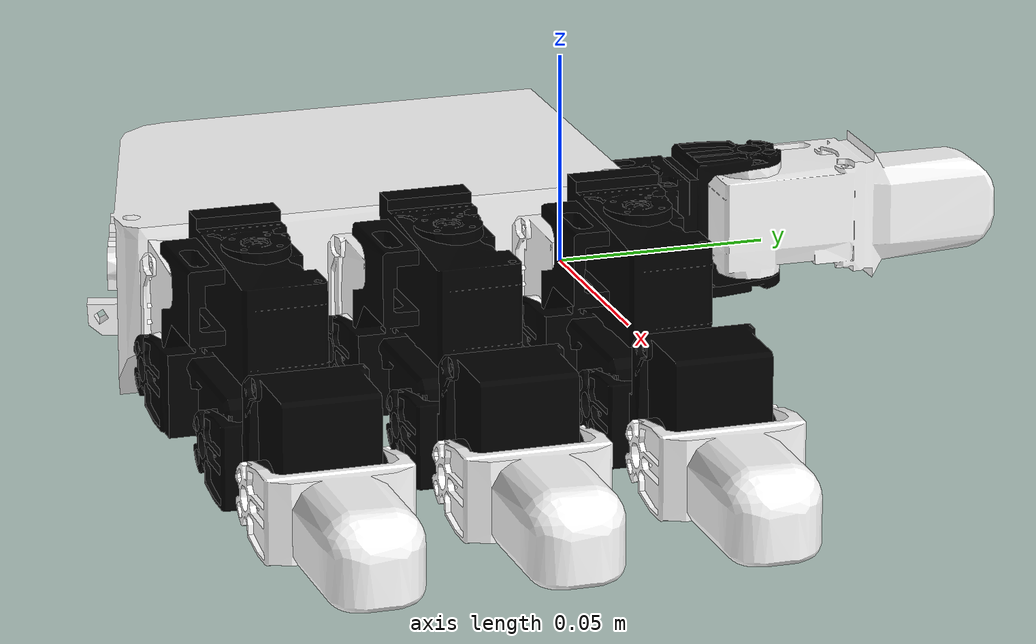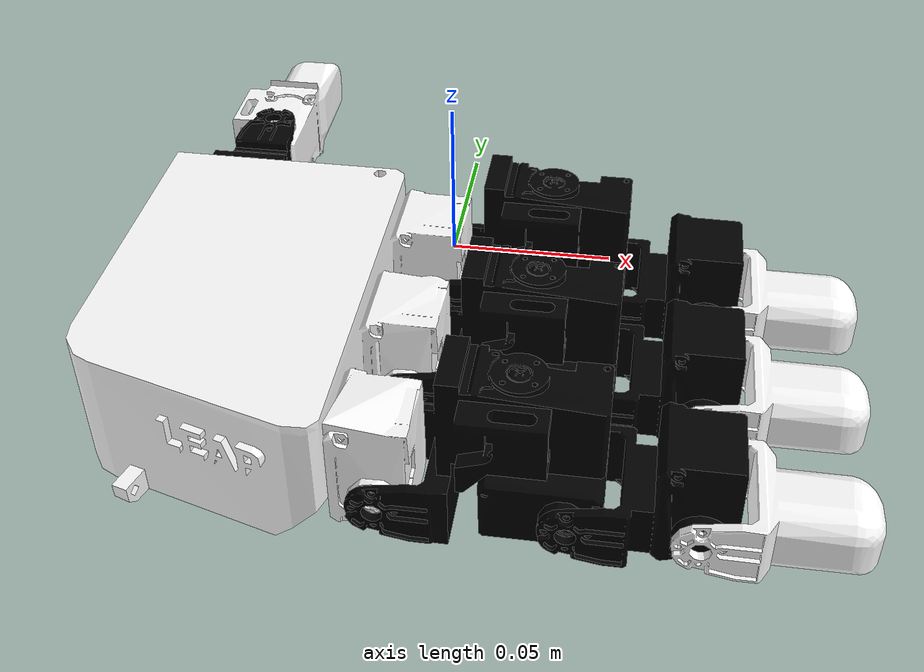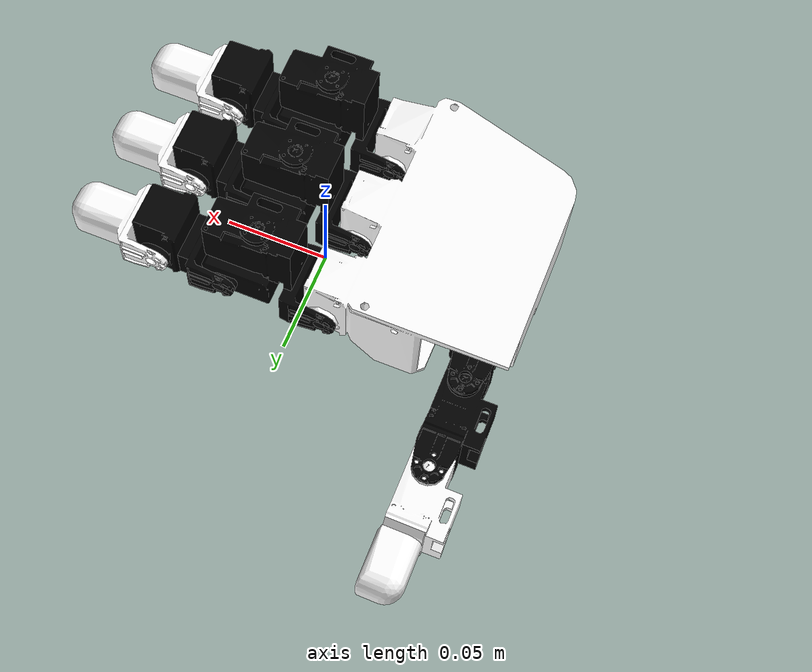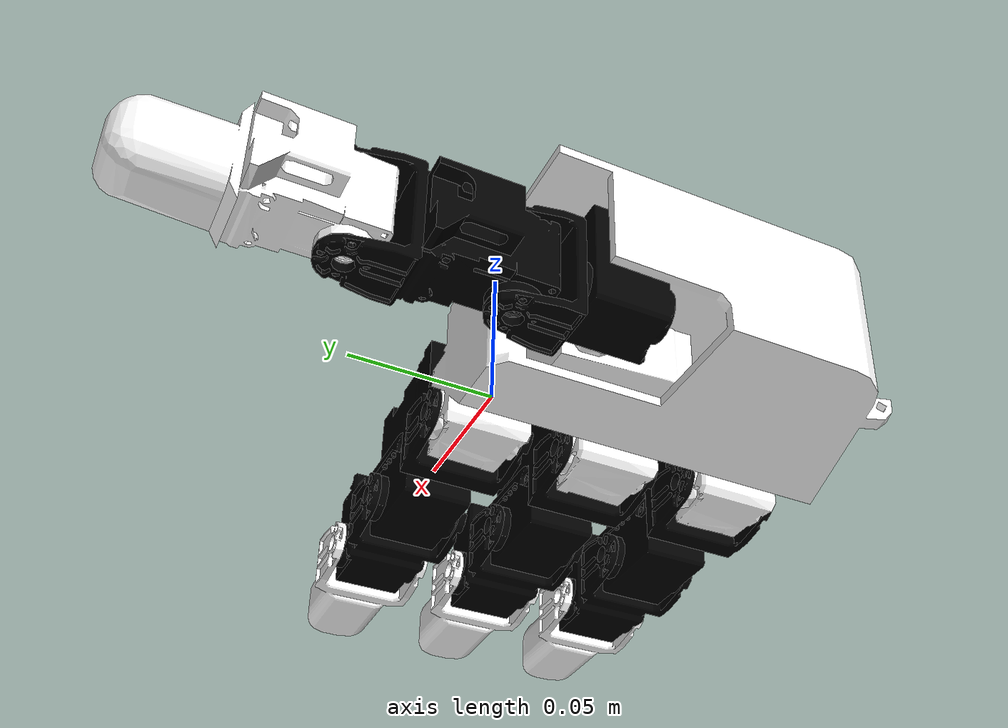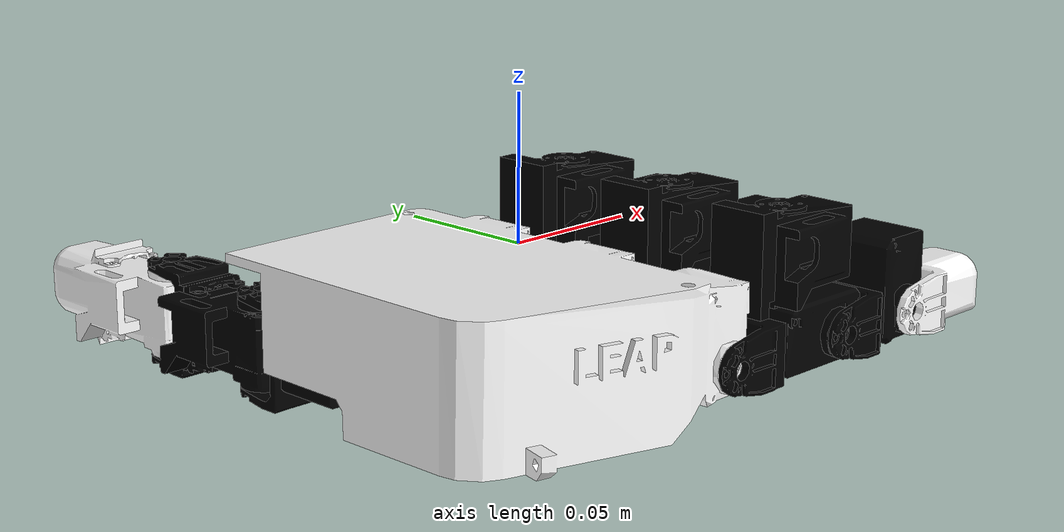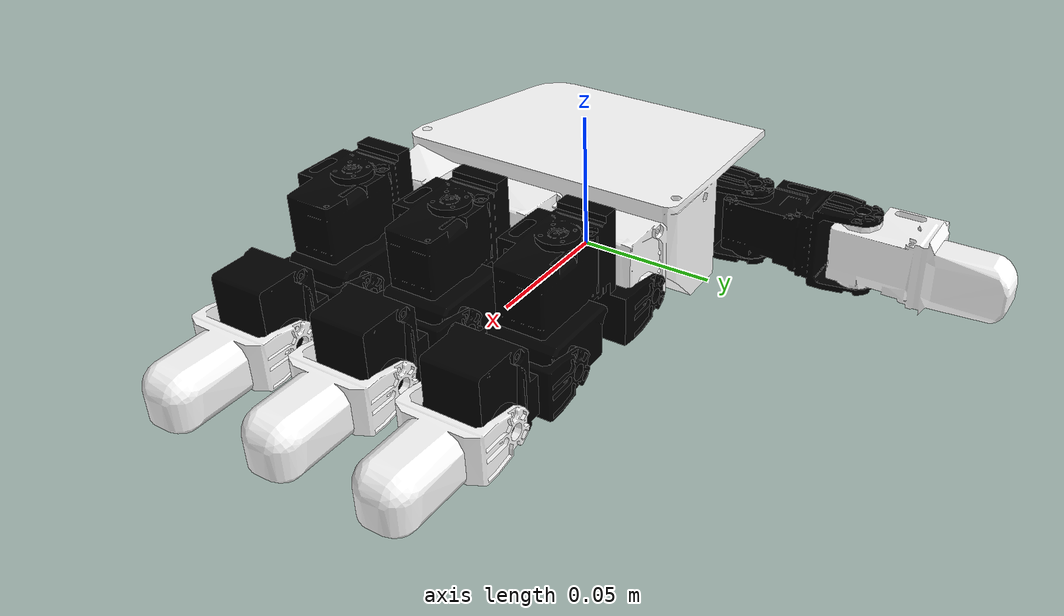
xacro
<?xml version="1.0"?>
<robot xmlns:xacro="http://www.ros.org/wiki/xacro" name="leap">
    <xacro:arg name="initial_positions_file" default="initial_positions.yaml" />
    <xacro:arg name="use_gazebo" default="false" />

    <!-- Import leap urdf file -->
    <xacro:include filename="$(find leap_description)/assets/leap_hand/robot.urdf.xacro" />

    <!-- Import control_xacro -->

    <xacro:if value="$(arg use_gazebo)">
        <xacro:include filename="leap.gz_control.xacro" />
        <xacro:leap_gz_control name="GazeboSimSystem" initial_positions_file="$(arg initial_positions_file)"/>
        <gazebo>
            <plugin filename="libgz_ros2_control-system.so" name="gz_ros2_control::GazeboSimROS2ControlPlugin">
                <parameters>/home/joel/distrobox/ros2-ubuntu/leap_ws/src/leap_control/leap_sim/config/leap_controller.yaml</parameters>
            </plugin>
        </gazebo>
    </xacro:if>
    <xacro:unless value="$(arg use_gazebo)">
        <xacro:include filename="leap.ros2_control.xacro" />
        <xacro:leap_ros2_control name="FakeSystem" initial_positions_file="$(arg initial_positions_file)"/>
    </xacro:unless>

</robot>

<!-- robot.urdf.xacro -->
<robot xmlns:xacro="http://www.ros.org/wiki/xacro" name="leap">

    <xacro:include filename="$(find leap_description)/assets/leap_hand/finger.xacro" />

    <link name="palm_lower">
        <visual>
            <origin xyz="-0.020095249652862544332 0.025757756134899473244 -0.034722403578460216134"
                rpy="0 -0 0" />
            <geometry>
                <mesh filename="package://leap_description/assets/leap_hand/palm_lower_3k.stl" />
            </geometry>
            <material name="palm_lower_material">
                <color
                    rgba="1 1 1 1.0" />
            </material>
        </visual>
        <collision>
            <origin xyz="-0.020095249652862544332 0.025757756134899473244 -0.034722403578460216134"
                rpy="0 -0 0" />
            <geometry>
                <mesh filename="package://leap_description/assets/leap_hand/palm_lower_3k_collision.stl" />
            </geometry>
        </collision>
        <inertial>
            <origin xyz="0 0 0" rpy="0 0 0" />
            <mass value="0.237" />
            <inertia ixx="0.000354094" ixy="-0.000001193" ixz="-0.000002445" iyy="0.000260915"
                iyz="-0.000002905" izz="0.000529257" />
        </inertial>
    </link>

    <xacro:finger_template finger="index" root="palm_lower" x="-0.0070952496528625457958"
        y="0.023057756134899472233" z="-0.01872240357846021927" />

    <xacro:finger_template finger="middle" root="palm_lower" x="-0.0070952496528625457958"
        y="-0.022392243865100525113" z="-0.01872240357846021927" />

    <xacro:finger_template finger="ring" root="palm_lower" x="-0.0070952496528625457958"
        y="-0.067842243865100515521" z="-0.01872240357846021927" />

    <link name="thumb_semi_palm_1">
        <visual>
            <origin
                xyz="-0.005356 0.0003 0.000784"
                rpy="-1.570796326794896558 -1.570796326794896336 0" />
            <geometry>
                <mesh filename="package://leap_description/assets/leap_hand/proximal_phalanx_2_2k.stl" />
            </geometry>
            <material name="thumb_semi_palm_2_material">
                <color
                    rgba="0 0 0 1.0" />
            </material>
        </visual>
        <collision>
            <origin
                xyz="-0.005356 0.0003 0.000784"
                rpy="-1.570796326794896558 -1.570796326794896336 0" />
            <geometry>
                <mesh filename="package://leap_description/assets/leap_hand/proximal_phalanx_2_2k_collision.stl" />
            </geometry>
        </collision>
        <inertial>
            <origin xyz="0 0 0" rpy="0 0 0" />
            <mass value="0.032" />
            <inertia ixx="0.000004798" ixy="0.000000012" ixz="0.000000004" iyy="0.000002862"
                iyz="0.000000011" izz="0.000004234" />
        </inertial>
    </link>

    <link name="thumb_semi_palm_2">
        <visual>
            <origin
                xyz="0.011962 0 -0.0158526"
                rpy="1.570796326794896558 0 0" />
            <geometry>
                <mesh filename="package://leap_description/assets/leap_hand/thumb_semi_palm_1k.stl" />
            </geometry>
            <material name="thumb_semi_palm_2_material">
                <color
                    rgba="0 0 0 1.0" />
            </material>
        </visual>
        <collision>
            <origin
                xyz="0.011962 0 -0.015853"
                rpy="1.570796326794896558 0 0" />
            <geometry>
                <mesh filename="package://leap_description/assets/leap_hand/thumb_semi_palm_1k_collision.stl" />
            </geometry>
        </collision>
        <inertial>
            <origin xyz="0 0 0" rpy="0 0 0" />
            <mass value="0.003" />
            <inertia ixx="0.000000593" ixy="0" ixz="0" iyy="0.000000549" iyz="0" izz="0.000000224" />
        </inertial>
    </link>

    <link name="thumb_middle_phalanx">
        <visual>
            <origin xyz="0.0439687 0.057953 -0.008629"
                rpy="0 0 0" />
            <geometry>
                <mesh
                    filename="package://leap_description/assets/leap_hand/thumb_middle_phalanx_3k.stl" />
            </geometry>
            <material name="thumb_middle_phalanx_material">
                <color
                    rgba="0 0 0 1.0" />
            </material>
        </visual>
        <collision>
            <origin xyz="0.0439687 0.057953 -0.008629"
                rpy="0 0 0" />
            <geometry>
                <mesh
                    filename="package://leap_description/assets/leap_hand/thumb_middle_phalanx_3k_collision.stl" />
            </geometry>
        </collision>
        <inertial>
            <origin xyz="0 0 0" rpy="0 0 0" />
            <mass value="0.038" />
            <inertia ixx="0.000008474" ixy="0.000000241" ixz="0.000000026" iyy="0.000003841"
                iyz="0.000000025" izz="0.000007679" />
        </inertial>
    </link>

    <link name="thumb_distal_phalanx">
        <visual>
            <origin xyz="0.06256 0.07846 0.048993"
                rpy="0 0 0" />
            <geometry>
                <mesh
                    filename="package://leap_description/assets/leap_hand/thumb_distal_phalanx_1k.stl" />
            </geometry>
            <material name="thumb_distal_phalanx_material">
                <color
                    rgba="1 1 1 1.0" />
            </material>
        </visual>
        <collision>
            <origin xyz="0.06256 0.07846 0.048993"
                rpy="0 0 0" />
            <geometry>
                <mesh
                    filename="package://leap_description/assets/leap_hand/thumb_distal_phalanx_1k_collision.stl" />
            </geometry>
        </collision>
        <inertial>
            <origin xyz="0 0 0" rpy="0 0 0" />
            <mass value="0.049" />
            <inertia ixx="0.000020372" ixy="-0.000000489" ixz="-0.00000003" iyy="0.000004336"
                iyz="-0.000000097" izz="0.000019845" />
        </inertial>
    </link>

    <joint name="thumb_cmc_abb_joint" type="revolute">
        <origin xyz="-0.069395 -0.001242 -0.0216224"
            rpy="0 1.5707963267948956698 0" />
        <parent link="palm_lower" />
        <child link="thumb_semi_palm_1" />
        <axis xyz="0 0 -1" />
        <limit effort="0.95" velocity="8.48" acceleration="20.0" lower="-0.38397" upper="2.02458" />
        <joint_properties friction="0.0" />
    </joint>

    <joint name="thumb_cmc_flex_joint" type="revolute">
        <origin xyz="0 0.0143 -0.013"
            rpy="1.5707963267948958919 -1.5707963267948958919 0" />
        <parent link="thumb_semi_palm_1" />
        <child link="thumb_semi_palm_2" />
        <axis xyz="0 0 -1" />
        <limit effort="0.95" velocity="8.48" acceleration="20.0" lower="-0.7854" upper="1.570796" />
        <joint_properties friction="0.0" />
    </joint>

    <joint name="thumb_mcp_joint" type="revolute">
        <origin xyz="0 0.0145 -0.017"
            rpy="-1.570796326794896558 0 0" />
        <parent link="thumb_semi_palm_2" />
        <child link="thumb_middle_phalanx" />
        <axis xyz="0 0 -1" />
        <limit effort="0.95" velocity="8.48" acceleration="20.0" lower="-0.34906" upper="1.7453" />
        <joint_properties friction="0.0" />
    </joint>

    <joint name="thumb_ip_joint" type="revolute">
        <origin xyz="0 0.0466 0.0002"
            rpy="0 0 3.141592653589793116" />
        <parent link="thumb_middle_phalanx" />
        <child link="thumb_distal_phalanx" />
        <axis xyz="0 0 -1" />
        <limit effort="0.95" velocity="8.48" acceleration="20.0" lower="-0.7854" upper="1.93731" />
        <joint_properties friction="0.0" />
    </joint>

</robot>

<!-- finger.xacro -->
<robot xmlns:xacro="http://www.ros.org/wiki/xacro">
    <xacro:macro name="finger_template" params="finger root x y z">
        <link name="${finger}_proximal_phalanx_1">
            <visual>
                <origin
                    xyz="0.008407 0.007766 0.014657"
                    rpy="0 0 0" />
                <geometry>
                    <mesh filename="package://leap_description/assets/leap_hand/proximal_phalanx_1_2k.stl" />
                </geometry>
                <material name="proximal_phalanx_1_material">
                    <color
                        rgba="0.0 0 0 1.0" />
                </material>
            </visual>
            <collision>
                <origin
                    xyz="0.008407 0.007766 0.014657"
                    rpy="0 0 0" />
                <geometry>
                    <mesh filename="package://leap_description/assets/leap_hand/proximal_phalanx_1_2k_collision.stl" />
                </geometry>
            </collision>
            <collision>
                <origin
                    xyz="-0.0 0.007 0.014"
                    rpy="0 0 0" />
                <geometry>
                    <box size="0.0225 0.03 0.035"/>
                </geometry>
            </collision>
            <inertial>
                <origin xyz="0 0 0" rpy="0 0 0" />
                <mass value="0.044" />
                <inertia ixx="0.000011499" ixy="0.000003049" ixz="0.000000121" iyy="0.000007796"
                    iyz="0.000000112" izz="0.000014759" />
            </inertial>
        </link>

        <link name="${finger}_proximal_phalanx_2">
            <visual>
                <origin
                    xyz="0.009643 0.0003 0.000784"
                    rpy="-1.570796326794896558 -1.570796326794896336 0" />
                <geometry>
                    <mesh filename="package://leap_description/assets/leap_hand/proximal_phalanx_2_2k.stl" />
                </geometry>
                <material name="proximal_phalanx_2_material">
                    <color
                        rgba="0.0 0 0 1.0" />
                </material>
            </visual>
            <collision>
                <origin
                    xyz="0.009643 0.0003 0.000784"
                    rpy="-1.570796326794896558 -1.570796326794896336 0" />
                <geometry>
                    <mesh filename="package://leap_description/assets/leap_hand/proximal_phalanx_2_2k_collision.stl" />
                </geometry>
            </collision>
            <inertial>
                <origin xyz="0 0 0" rpy="0 0 0" />
                <mass value="0.032" />
                <inertia ixx="0.000004798" ixy="0.000000012" ixz="0.000000004" iyy="0.000002862"
                    iyz="0.000000011" izz="0.000004234" />
            </inertial>
        </link>

        <link name="${finger}_middle_phalanx">
            <visual>
                <origin
                    xyz="0.021133 -0.008432 0.009785"
                    rpy="-3.141592653589793116 0 0" />
                <geometry>
                    <mesh filename="package://leap_description/assets/leap_hand/middle_phalanx_2k.stl" />
                </geometry>
                <material name="middle_phalanx_material">
                    <color
                        rgba="0.0 0 0 1.0" />
                </material>
            </visual>
            <collision>
                <origin
                    xyz="0.021133 -0.008432 0.009785"
                    rpy="-3.141592653589793116 0 0" />
                <geometry>
                    <mesh filename="package://leap_description/assets/leap_hand/middle_phalanx_2k_collision.stl" />
                </geometry>
            </collision>
            <inertial>
                <origin xyz="0 0 0" rpy="0 0 0" />
                <mass value="0.037" />
                <inertia ixx="0.000005542" ixy="-0.000000607" ixz="-0.000000017" iyy="0.000005727"
                    iyz="-0.000000023" izz="0.000006682" />
            </inertial>
        </link>

        <link name="${finger}_distal_phalanx">
            <visual>
                <origin
                    xyz="0.0132864 -0.006114 0.0145"
                    rpy="3.141592653589793116 0 0" />
                <geometry>
                    <mesh filename="package://leap_description/assets/leap_hand/distal_phalanx_1k.stl" />
                </geometry>
                <material name="distal_phalanx_material">
                    <color
                        rgba="1 1 1 1.0" />
                </material>
            </visual>
            <collision>
                <origin
                    xyz="0.013286 -0.006114 0.0145"
                    rpy="3.141592653589793116 0 0" />
                <geometry>
                    <mesh filename="package://leap_description/assets/leap_hand/distal_phalanx_1k_collision.stl" />
                </geometry>
            </collision>
            <inertial>
                <origin xyz="0 0 0" rpy="0 0 0" />
                <mass value="0.016" />
                <inertia ixx="0.000003368" ixy="0.000000115" ixz="0" iyy="0.000001556" iyz="0"
                    izz="0.000002863" />
            </inertial>
        </link>

        <joint name="${finger}_pip_flex_joint" type="revolute">
            <origin xyz="${x} ${y} ${z}"
                rpy="1.5707963267948950037 1.5707963267948945596 0" />
            <parent link="${root}" />
            <child link="${finger}_proximal_phalanx_1" />
            <axis xyz="0 0 -1" />
            <limit effort="0.95" velocity="8.48" acceleration="20.0" lower="-0.31416" upper="2.3038" />
            <joint_properties friction="0.0" />
        </joint>

        <joint name="${finger}_pip_abb_joint" type="revolute">
            <origin xyz="-0.0122 0.0381 0.0145"
                rpy="-1.570796326794896558 0 1.5707963267948943376" />
            <parent link="${finger}_proximal_phalanx_1" />
            <child link="${finger}_proximal_phalanx_2" />
            <axis xyz="0 0 -1" />
            <limit effort="0.95" velocity="8.48" acceleration="20.0" lower="-1.378810" upper="1.378810"/>
            <joint_properties friction="0.0" />
        </joint>

        <joint name="${finger}_mcp_joint" type="revolute">
            <origin xyz="0.015 0.0143 -0.013"
                rpy="1.5707963267948958919 -1.570796326794896336 0" />
            <parent link="${finger}_proximal_phalanx_2" />
            <child link="${finger}_middle_phalanx" />
            <axis xyz="0 0 -1" />
            <limit effort="0.95" velocity="8.48" acceleration="20.0" lower="-0.45379" upper="2.44346" />
            <joint_properties friction="0.0" />
        </joint>

        <joint name="${finger}_dip_joint" type="revolute">
            <origin
                xyz="0 -0.0361 0.0002"
                rpy="0 0 0" />
            <parent link="${finger}_middle_phalanx" />
            <child link="${finger}_distal_phalanx" />
            <axis xyz="0 0 -1" />
            <limit effort="0.95" velocity="8.48" acceleration="20.0" lower="-0.3491" upper="1.867502" />
            <joint_properties friction="0.0" />
        </joint>
    </xacro:macro>
</robot>
